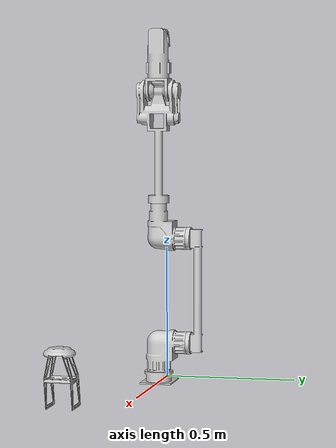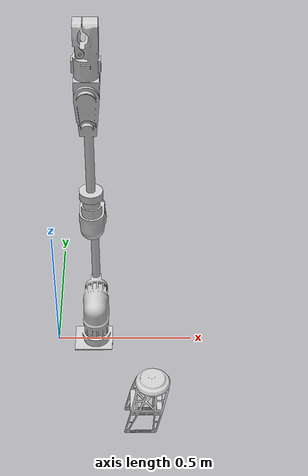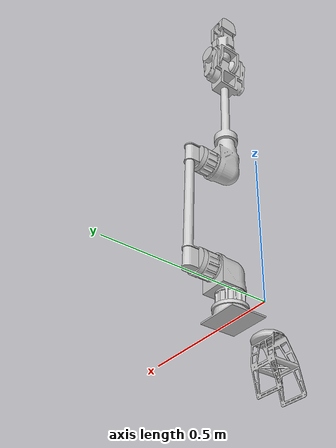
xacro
<?xml version="1.0"?>
<robot xmlns:xacro="http://www.ros.org/wiki/xacro" name="arm">
    <xacro:arg name="initial_positions_file"
        default="$(find kalman_arm_moveit_config)/config/initial_positions.yaml" />
    <link name="base_link" />

    <xacro:include filename="$(find kalman_description)/urdf/arm.urdf.xacro" />

    <xacro:arm base_link="base_link"/>

    <material name="red">
        <color rgba="1 0.2 0.2 1" />
    </material>

    <xacro:include filename="$(find kalman_description)/urdf/visual_model.urdf.xacro" />

    <xacro:include filename="$(find kalman_arm_moveit_config)/ros2_control/arm.ros2_control.xacro" />
    <xacro:arm_ros2_control name="kalman_arm" />

</robot>

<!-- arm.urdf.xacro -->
<robot xmlns:xacro="http://www.ros.org/wiki/xacro" name="arm">
    <xacro:macro name="arm" params="base_link">
        <material name="arm_mat">
            <color rgba="0.8 0.8 0.8 1" />
        </material>

        <link name="skirt_module">
            <visual>
                <geometry>
                    <mesh filename="package://kalman_description/stl/skirt.stl" />
                </geometry>
                <material name="arm_mat" />
            </visual>
        </link>

        <link name="arm_link">
            <visual>
                <geometry>
                    <mesh filename="package://kalman_description/stl/arm0_base.stl" />
                </geometry>
                <material name="arm_mat" />
            </visual>
        </link>
        <joint name="skirt_joint" type="fixed">
            <parent link="${base_link}" />
            <child link="skirt_module" />
            <origin xyz="0.35 -0.333 0.15"/>
        </joint>
`
        <joint name="arm_joint" type="fixed">
            <parent link="${base_link}" />
            <child link="arm_link" />
            <origin xyz="0.143 0 0" />
        </joint>

        <link name="arm_link_1">
            <visual>
                <geometry>
                    <mesh filename="package://kalman_description/stl/arm1.stl" />
                </geometry>
                <material name="arm_mat" />
            </visual>
        </link>
        <joint name="arm_joint_1" type="revolute">
            <parent link="arm_link" />
            <child link="arm_link_1" />
            <origin xyz="0 0 0.045" />
            <axis xyz="0 0 -1" />
            <limit effort="1000.0" lower="-6.28" upper="6.28" velocity="0.5" />
        </joint>

        <link name="arm_link_2">
            <visual>
                <geometry>
                    <mesh filename="package://kalman_description/stl/arm2.stl" />
                </geometry>
                <material name="arm_mat" />
            </visual>
        </link>
        <joint name="arm_joint_2" type="revolute">
            <parent link="arm_link_1" />
            <child link="arm_link_2" />
            <origin xyz="0 0.110 0.109" />
            <axis xyz="0 1 0" />
            <limit effort="1000.0" lower="-3.14" upper="3.14" velocity="0.5" />
        </joint>

        <link name="arm_link_3">
            <visual>
                <geometry>
                    <mesh filename="package://kalman_description/stl/arm3.stl" />
                </geometry>
                <material name="arm_mat" />
            </visual>
        </link>
        <joint name="arm_joint_3" type="revolute">
            <parent link="arm_link_2" />
            <child link="arm_link_3" />
            <origin xyz="0 0 0.397" />
            <axis xyz="0 1 0" />
            <limit effort="1000.0" lower="-2.88" upper="2.88" velocity="0.5" />
        </joint>

        <link name="arm_link_4">
            <visual>
                <geometry>
                    <mesh filename="package://kalman_description/stl/arm4.stl" />
                </geometry>
                <material name="arm_mat" />
            </visual>
        </link>
        <joint name="arm_joint_4" type="revolute">
            <parent link="arm_link_3" />
            <child link="arm_link_4" />
            <origin xyz="0 -0.110 0.133" />
            <axis xyz="0 0 1" />
            <limit effort="1000.0" lower="-6.40" upper="6.40" velocity="0.5" />
        </joint>

        <link name="arm_link_5">
            <visual>
                <geometry>
                    <mesh filename="package://kalman_description/stl/arm5.stl" />
                </geometry>
                <material name="arm_mat" />
            </visual>
        </link>
        <joint name="arm_joint_5" type="revolute">
            <parent link="arm_link_4" />
            <child link="arm_link_5" />
            <origin xyz="0 0 0.423" />
            <axis xyz="0 1 0" />
            <limit effort="1000.0" lower="-1.75" upper="1.75" velocity="0.5" />
        </joint>

        <link name="arm_link_6">
            <visual>
                <geometry>
                    <mesh filename="package://kalman_description/stl/arm6.stl" />
                </geometry>
                <material name="arm_mat" />
            </visual>
        </link>
        <joint name="arm_joint_6" type="revolute">
            <parent link="arm_link_5" />
            <child link="arm_link_6" />
            <origin xyz="0 0 0.047" />
            <axis xyz="0 0 1" />
            <limit effort="1000.0" lower="-3.40" upper="3.40" velocity="0.5" />
        </joint>

        <link name="arm_link_jaw">
            <visual>
                <geometry>
                    <mesh filename="package://kalman_description/stl/arm7_jaw.stl" />
                </geometry>
                <material name="arm_mat" />
            </visual>
        </link>
        <joint name="arm_joint_jaw" type="revolute">
            <parent link="arm_link_6" />
            <child link="arm_link_jaw" />
            <origin xyz="-0.016 0 0.086" />
            <axis xyz="0 -1 0" />
            <limit effort="1000.0" lower="-0.10" upper="1.57" velocity="0.5" />
        </joint>

        <link name="arm_link_end" />
        <joint name="arm_joint_end" type="fixed">
            <parent link="arm_link_6" />
            <child link="arm_link_end" />
            <origin xyz="0.016 0 0.101" rpy="0 -1.57 0" />
        </joint>
    </xacro:macro>
</robot>
